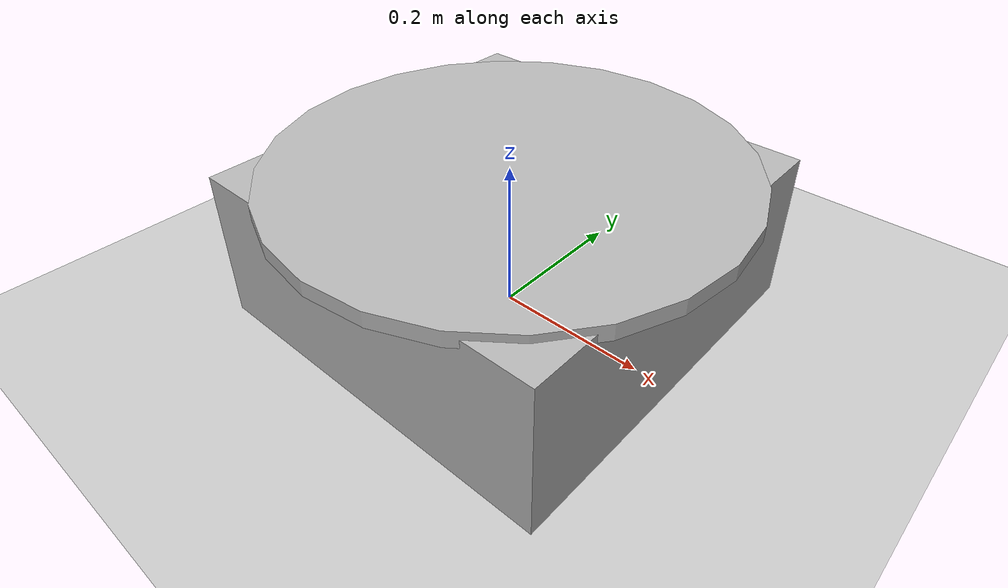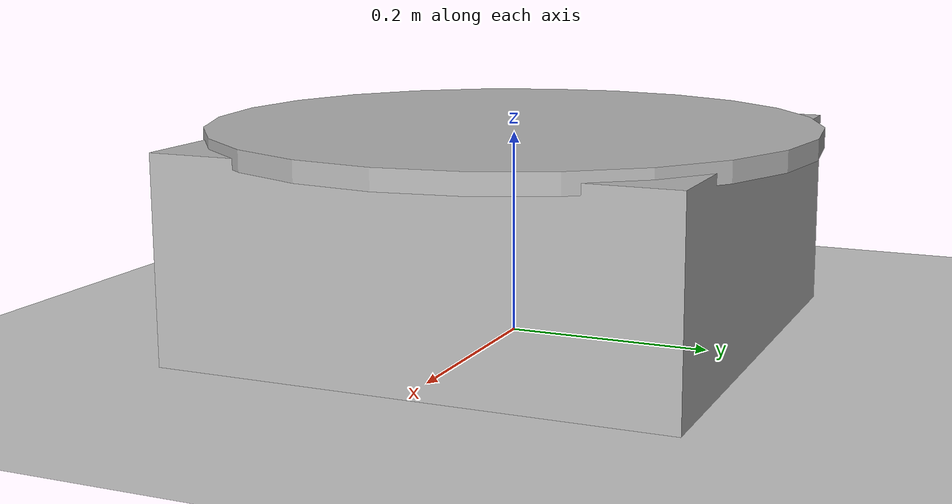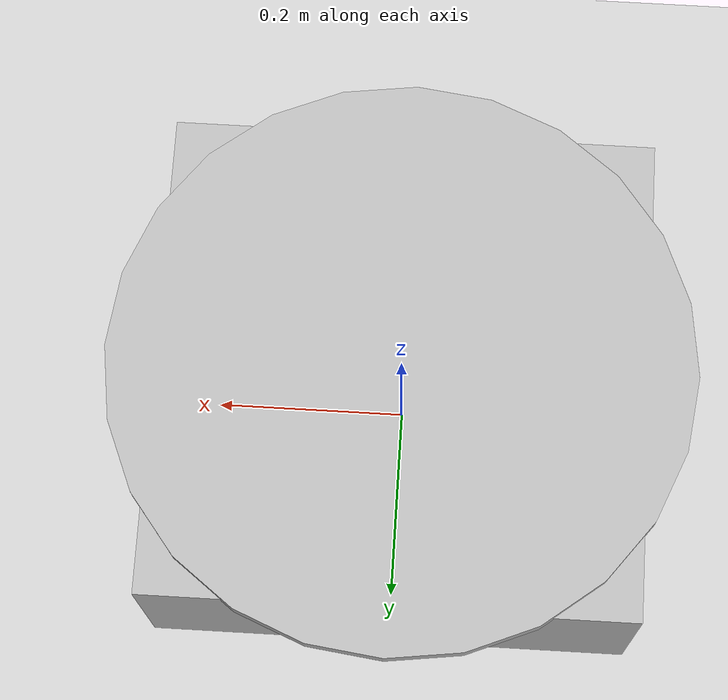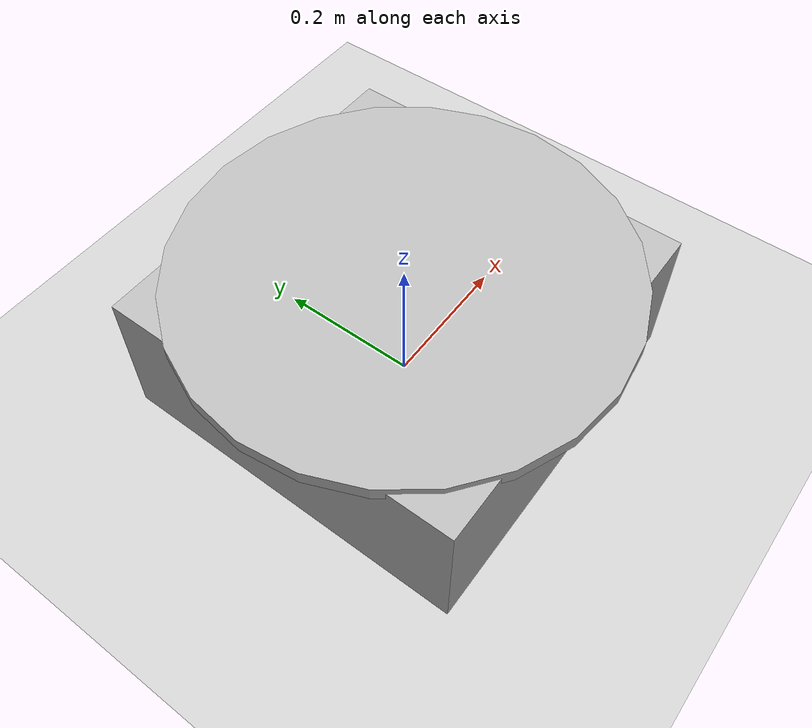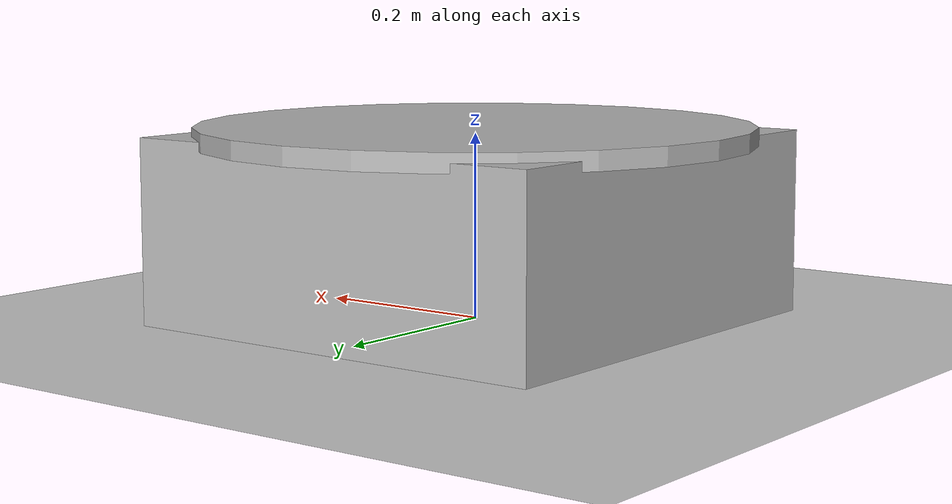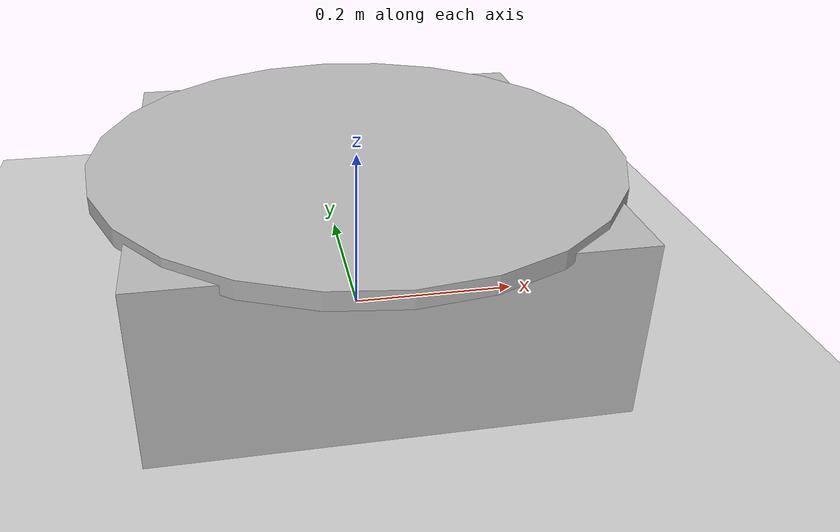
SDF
<!-- models/spinner_bot/model.sdf -->
<sdf version="1.6">
  <model name="spinner_bot">
    <include>
      <uri>model://ground_plane</uri>
    </include>
    <include>
      <uri>model://sun</uri>
    </include>

    <link name="base_link">
      <pose>0 0 0.1 0 0 0</pose>
      <inertial>
        <mass>5.0</mass>
        <inertia>
          <ixx>0.1</ixx>
          <iyy>0.1</iyy>
          <izz>0.1</izz>
        </inertia>
      </inertial>
      <collision name="collision">
        <geometry>
          <box>
            <size>0.5 0.5 0.2</size>
          </box>
        </geometry>
      </collision>
      <visual name="visual">
        <geometry>
          <box>
            <size>0.5 0.5 0.2</size>
          </box>
        </geometry>
      </visual>
    </link>

    <link name="spinner">
      <pose>0 0 0.2 0 0 0</pose>
      <inertial>
        <mass>1.0</mass>
        <inertia>
          <ixx>0.02</ixx>
          <iyy>0.02</iyy>
          <izz>0.01</izz>
        </inertia>
      </inertial>
      <collision name="collision">
        <geometry>
          <cylinder>
            <radius>0.3</radius>
            <length>0.02</length>
          </cylinder>
        </geometry>
      </collision>
      <visual name="visual">
        <geometry>
          <cylinder>
            <radius>0.3</radius>
            <length>0.02</length>
          </cylinder>
        </geometry>
      </visual>
    </link>

    <joint name="spinner_joint" type="revolute">
      <parent>base_link</parent>
      <child>spinner</child>
      <axis>
        <xyz>0 0 1</xyz>
        <limit>
          <effort>10</effort>
          <velocity>20</velocity>
        </limit>
      </axis>
    </joint>

    <!-- Plugin to spin the spinner -->
    <plugin name="spinner_control" filename="libgazebo_ros_joint_force.so">
      <joint_name>spinner_joint</joint_name>
      <force>1.0</force>
    </plugin>
  </model>
</sdf>
